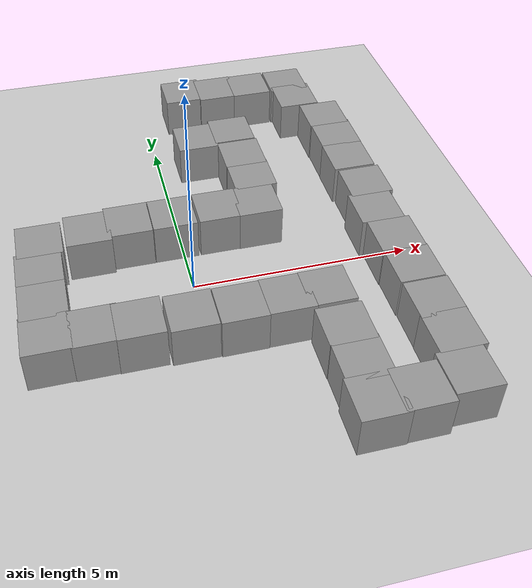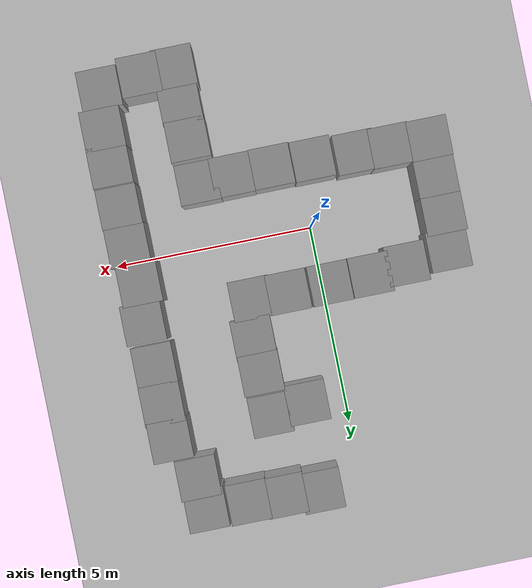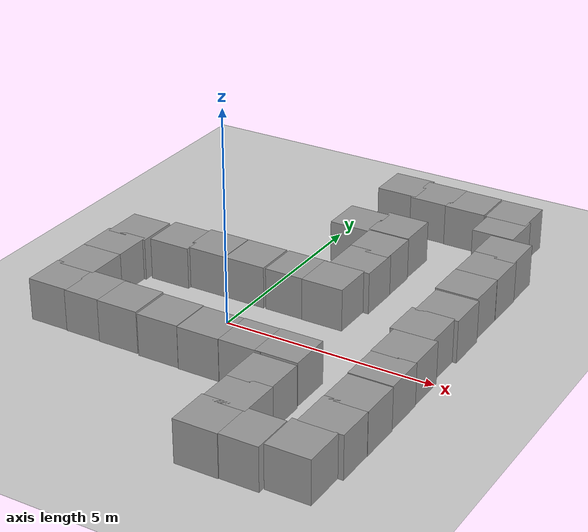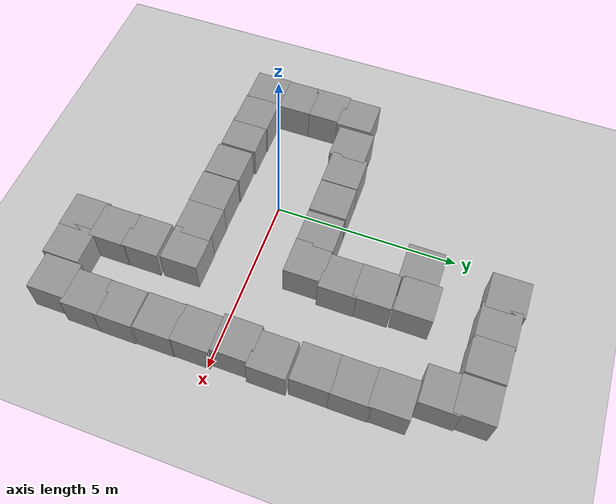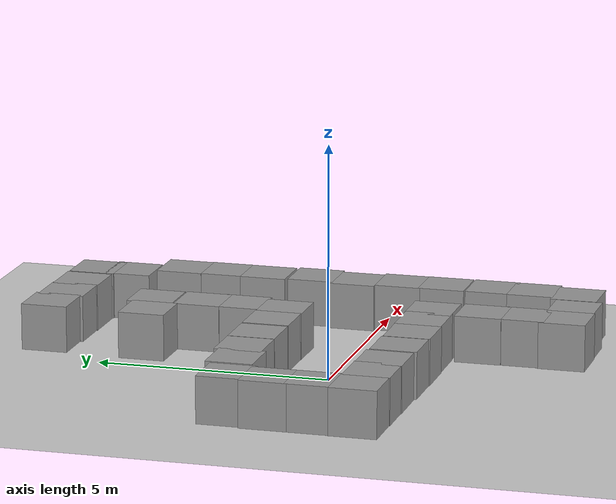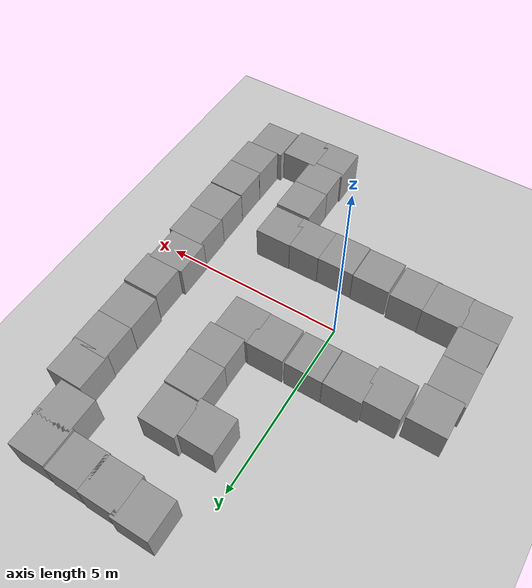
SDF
<sdf version="1.7">
 <world name="default">
  <light name="sun" type="directional">
   <pose>0 0 10 0 -0 0</pose>
   <diffuse>0.8 0.8 0.8 1</diffuse>
   <specular>0.2 0.2 0.2 1</specular>
   <attenuation>
    <range>1000</range>
    <constant>0.9</constant>
    <linear>0.01</linear>
    <quadratic>0.001</quadratic>
   </attenuation>
   <direction>-0.5 0.1 -0.9</direction>
   <spot><inner_angle>0</inner_angle><outer_angle>0</outer_angle><falloff>0</falloff></spot>
  </light>
  <model name="ground_plane">
   <static>1</static>
   <link name="link">
    <collision name="collision">
     <geometry><plane><normal>0 0 1</normal><size>100 100</size></plane></geometry>
     <surface>
      <contact><collide_bitmask>65535</collide_bitmask></contact>
      <friction><ode><mu>100</mu><mu2>50</mu2></ode></friction>
     </surface>
    </collision>
    <visual name="visual">
     <cast_shadows>0</cast_shadows>
     <geometry><plane><normal>0 0 1</normal><size>100 100</size></plane></geometry>
     <material>
      <script><uri>file://media/materials/scripts/gazebo.material</uri><name>Gazebo/Grey</name></script>
     </material>
    </visual>
   </link>
  </model>
  <gravity>0 0 -9.8</gravity>
  <magnetic_field>6e-06 2.3e-05 -4.2e-05</magnetic_field>
  <atmosphere type="adiabatic"/>
  <physics type="ode">
   <max_step_size>0.001</max_step_size>
   <real_time_factor>1</real_time_factor>
   <real_time_update_rate>1000</real_time_update_rate>
  </physics>
  <scene><ambient>0.4 0.4 0.4 1</ambient><background>0.7 0.7 0.7 1</background><shadows>1</shadows></scene>
  <spherical_coordinates>
   <surface_model>EARTH_WGS84</surface_model>
   <latitude_deg>0</latitude_deg>
   <longitude_deg>0</longitude_deg>
   <elevation>0</elevation>
   <heading_deg>0</heading_deg>
  </spherical_coordinates>
  <model name="unit_box">
   <pose>-1.18505 1.46469 0.5 0 -0 0</pose>
   <link name="link">
    <inertial>
     <mass>1</mass>
     <inertia>
      <ixx>0.166667</ixx>
      <ixy>0</ixy>
      <ixz>0</ixz>
      <iyy>0.166667</iyy>
      <iyz>0</iyz>
      <izz>0.166667</izz>
     </inertia>
    </inertial>
    <collision name="collision"><geometry><box><size>1 1 1</size></box></geometry></collision>
    <visual name="visual">
     <geometry><box><size>1 1 1</size></box></geometry>
     <material>
      <script><name>Gazebo/Grey</name><uri>file://media/materials/scripts/gazebo.material</uri></script>
     </material>
    </visual>
   </link>
  </model>
  <model name="unit_box_clone">
   <pose>-0.170822 1.46764 0.5 0 -0 0</pose>
   <link name="link">
    <inertial>
     <mass>1</mass>
     <inertia>
      <ixx>0.166667</ixx>
      <ixy>0</ixy>
      <ixz>0</ixz>
      <iyy>0.166667</iyy>
      <iyz>0</iyz>
      <izz>0.166667</izz>
     </inertia>
    </inertial>
    <collision name="collision"><geometry><box><size>1 1 1</size></box></geometry></collision>
    <visual name="visual">
     <geometry><box><size>1 1 1</size></box></geometry>
     <material>
      <script><name>Gazebo/Grey</name><uri>file://media/materials/scripts/gazebo.material</uri></script>
     </material>
    </visual>
   </link>
  </model>
  <model name="unit_box_clone_0">
   <pose>0.879436 1.47037 0.5 0 -0 0</pose>
   <link name="link">
    <inertial>
     <mass>1</mass>
     <inertia>
      <ixx>0.166667</ixx>
      <ixy>0</ixy>
      <ixz>0</ixz>
      <iyy>0.166667</iyy>
      <iyz>0</iyz>
      <izz>0.166667</izz>
     </inertia>
    </inertial>
    <collision name="collision"><geometry><box><size>1 1 1</size></box></geometry></collision>
    <visual name="visual">
     <geometry><box><size>1 1 1</size></box></geometry>
     <material>
      <script><name>Gazebo/Grey</name><uri>file://media/materials/scripts/gazebo.material</uri></script>
     </material>
    </visual>
   </link>
  </model>
  <model name="unit_box_clone_1">
   <pose>1.80386 1.45866 0.5 0 -0 0</pose>
   <link name="link">
    <inertial>
     <mass>1</mass>
     <inertia>
      <ixx>0.166667</ixx>
      <ixy>0</ixy>
      <ixz>0</ixz>
      <iyy>0.166667</iyy>
      <iyz>0</iyz>
      <izz>0.166667</izz>
     </inertia>
    </inertial>
    <collision name="collision"><geometry><box><size>1 1 1</size></box></geometry></collision>
    <visual name="visual">
     <geometry><box><size>1 1 1</size></box></geometry>
     <material>
      <script><name>Gazebo/Grey</name><uri>file://media/materials/scripts/gazebo.material</uri></script>
     </material>
    </visual>
   </link>
  </model>
  <model name="unit_box_clone_4">
   <pose>2.51695 -1.58945 0.5 0 -0 0</pose>
   <link name="link">
    <inertial>
     <mass>1</mass>
     <inertia>
      <ixx>0.166667</ixx>
      <ixy>0</ixy>
      <ixz>0</ixz>
      <iyy>0.166667</iyy>
      <iyz>0</iyz>
      <izz>0.166667</izz>
     </inertia>
    </inertial>
    <collision name="collision"><geometry><box><size>1 1 1</size></box></geometry></collision>
    <visual name="visual">
     <geometry><box><size>1 1 1</size></box></geometry>
     <material>
      <script><name>Gazebo/Grey</name><uri>file://media/materials/scripts/gazebo.material</uri></script>
     </material>
    </visual>
   </link>
  </model>
  <model name="unit_box_clone_5">
   <pose>1.66232 -1.60231 0.5 0 -0 0</pose>
   <link name="link">
    <inertial>
     <mass>1</mass>
     <inertia>
      <ixx>0.166667</ixx>
      <ixy>0</ixy>
      <ixz>0</ixz>
      <iyy>0.166667</iyy>
      <iyz>0</iyz>
      <izz>0.166667</izz>
     </inertia>
    </inertial>
    <collision name="collision"><geometry><box><size>1 1 1</size></box></geometry></collision>
    <visual name="visual">
     <geometry><box><size>1 1 1</size></box></geometry>
     <material>
      <script><name>Gazebo/Grey</name><uri>file://media/materials/scripts/gazebo.material</uri></script>
     </material>
    </visual>
   </link>
  </model>
  <model name="unit_box_clone_6">
   <pose>1.89562 4.32996 0.5 0 -0 0</pose>
   <link name="link">
    <inertial>
     <mass>1</mass>
     <inertia>
      <ixx>0.166667</ixx>
      <ixy>0</ixy>
      <ixz>0</ixz>
      <iyy>0.166667</iyy>
      <iyz>0</iyz>
      <izz>0.166667</izz>
     </inertia>
    </inertial>
    <collision name="collision"><geometry><box><size>1 1 1</size></box></geometry></collision>
    <visual name="visual">
     <geometry><box><size>1 1 1</size></box></geometry>
     <material>
      <script><name>Gazebo/Grey</name><uri>file://media/materials/scripts/gazebo.material</uri></script>
     </material>
    </visual>
   </link>
  </model>
  <model name="unit_box_clone_7">
   <pose>1.92634 3.29637 0.5 0 -0 0</pose>
   <link name="link">
    <inertial>
     <mass>1</mass>
     <inertia>
      <ixx>0.166667</ixx>
      <ixy>0</ixy>
      <ixz>0</ixz>
      <iyy>0.166667</iyy>
      <iyz>0</iyz>
      <izz>0.166667</izz>
     </inertia>
    </inertial>
    <collision name="collision"><geometry><box><size>1 1 1</size></box></geometry></collision>
    <visual name="visual">
     <geometry><box><size>1 1 1</size></box></geometry>
     <material>
      <script><name>Gazebo/Grey</name><uri>file://media/materials/scripts/gazebo.material</uri></script>
     </material>
    </visual>
   </link>
  </model>
  <model name="unit_box_clone_8">
   <pose>1.93707 2.4129 0.5 0 -0 0</pose>
   <link name="link">
    <inertial>
     <mass>1</mass>
     <inertia>
      <ixx>0.166667</ixx>
      <ixy>0</ixy>
      <ixz>0</ixz>
      <iyy>0.166667</iyy>
      <iyz>0</iyz>
      <izz>0.166667</izz>
     </inertia>
    </inertial>
    <collision name="collision"><geometry><box><size>1 1 1</size></box></geometry></collision>
    <visual name="visual">
     <geometry><box><size>1 1 1</size></box></geometry>
     <material>
      <script><name>Gazebo/Grey</name><uri>file://media/materials/scripts/gazebo.material</uri></script>
     </material>
    </visual>
   </link>
  </model>
  <model name="unit_box_clone_2">
   <pose>4.42952 4.46133 0.5 0 -0 0</pose>
   <link name="link">
    <inertial>
     <mass>1</mass>
     <inertia>
      <ixx>0.166667</ixx>
      <ixy>0</ixy>
      <ixz>0</ixz>
      <iyy>0.166667</iyy>
      <iyz>0</iyz>
      <izz>0.166667</izz>
     </inertia>
    </inertial>
    <collision name="collision"><geometry><box><size>1 1 1</size></box></geometry></collision>
    <visual name="visual">
     <geometry><box><size>1 1 1</size></box></geometry>
     <material>
      <script><name>Gazebo/Grey</name><uri>file://media/materials/scripts/gazebo.material</uri></script>
     </material>
    </visual>
   </link>
  </model>
  <model name="unit_box_clone_9">
   <pose>4.4492 3.55149 0.5 0 -0 0</pose>
   <link name="link">
    <inertial>
     <mass>1</mass>
     <inertia>
      <ixx>0.166667</ixx>
      <ixy>0</ixy>
      <ixz>0</ixz>
      <iyy>0.166667</iyy>
      <iyz>0</iyz>
      <izz>0.166667</izz>
     </inertia>
    </inertial>
    <collision name="collision"><geometry><box><size>1 1 1</size></box></geometry></collision>
    <visual name="visual">
     <geometry><box><size>1 1 1</size></box></geometry>
     <material>
      <script><name>Gazebo/Grey</name><uri>file://media/materials/scripts/gazebo.material</uri></script>
     </material>
    </visual>
   </link>
  </model>
  <model name="unit_box_clone_10">
   <pose>4.44361 2.57263 0.5 0 -0 0</pose>
   <link name="link">
    <inertial>
     <mass>1</mass>
     <inertia>
      <ixx>0.166667</ixx>
      <ixy>0</ixy>
      <ixz>0</ixz>
      <iyy>0.166667</iyy>
      <iyz>0</iyz>
      <izz>0.166667</izz>
     </inertia>
    </inertial>
    <collision name="collision"><geometry><box><size>1 1 1</size></box></geometry></collision>
    <visual name="visual">
     <geometry><box><size>1 1 1</size></box></geometry>
     <material>
      <script><name>Gazebo/Grey</name><uri>file://media/materials/scripts/gazebo.material</uri></script>
     </material>
    </visual>
   </link>
  </model>
  <model name="unit_box_clone_11">
   <pose>4.50204 1.51512 0.5 0 -0 0</pose>
   <link name="link">
    <inertial>
     <mass>1</mass>
     <inertia>
      <ixx>0.166667</ixx>
      <ixy>0</ixy>
      <ixz>0</ixz>
      <iyy>0.166667</iyy>
      <iyz>0</iyz>
      <izz>0.166667</izz>
     </inertia>
    </inertial>
    <collision name="collision"><geometry><box><size>1 1 1</size></box></geometry></collision>
    <visual name="visual">
     <geometry><box><size>1 1 1</size></box></geometry>
     <material>
      <script><name>Gazebo/Grey</name><uri>file://media/materials/scripts/gazebo.material</uri></script>
     </material>
    </visual>
   </link>
  </model>
  <model name="unit_box_clone_12">
   <pose>4.40958 0.568618 0.5 0 -0 0</pose>
   <link name="link">
    <inertial>
     <mass>1</mass>
     <inertia>
      <ixx>0.166667</ixx>
      <ixy>0</ixy>
      <ixz>0</ixz>
      <iyy>0.166667</iyy>
      <iyz>0</iyz>
      <izz>0.166667</izz>
     </inertia>
    </inertial>
    <collision name="collision"><geometry><box><size>1 1 1</size></box></geometry></collision>
    <visual name="visual">
     <geometry><box><size>1 1 1</size></box></geometry>
     <material>
      <script><name>Gazebo/Grey</name><uri>file://media/materials/scripts/gazebo.material</uri></script>
     </material>
    </visual>
   </link>
  </model>
  <model name="unit_box_clone_13">
   <pose>4.50703 -0.426358 0.5 0 -0 0</pose>
   <link name="link">
    <inertial>
     <mass>1</mass>
     <inertia>
      <ixx>0.166667</ixx>
      <ixy>0</ixy>
      <ixz>0</ixz>
      <iyy>0.166667</iyy>
      <iyz>0</iyz>
      <izz>0.166667</izz>
     </inertia>
    </inertial>
    <collision name="collision"><geometry><box><size>1 1 1</size></box></geometry></collision>
    <visual name="visual">
     <geometry><box><size>1 1 1</size></box></geometry>
     <material>
      <script><name>Gazebo/Grey</name><uri>file://media/materials/scripts/gazebo.material</uri></script>
     </material>
    </visual>
   </link>
  </model>
  <model name="unit_box_clone_3">
   <pose>4.52358 -1.39084 0.5 0 -0 0</pose>
   <link name="link">
    <inertial>
     <mass>1</mass>
     <inertia>
      <ixx>0.166667</ixx>
      <ixy>0</ixy>
      <ixz>0</ixz>
      <iyy>0.166667</iyy>
      <iyz>0</iyz>
      <izz>0.166667</izz>
     </inertia>
    </inertial>
    <collision name="collision"><geometry><box><size>1 1 1</size></box></geometry></collision>
    <visual name="visual">
     <geometry><box><size>1 1 1</size></box></geometry>
     <material>
      <script><name>Gazebo/Grey</name><uri>file://media/materials/scripts/gazebo.material</uri></script>
     </material>
    </visual>
   </link>
  </model>
  <model name="unit_box_clone_14">
   <pose>4.54227 -2.41943 0.5 0 -0 0</pose>
   <link name="link">
    <inertial>
     <mass>1</mass>
     <inertia>
      <ixx>0.166667</ixx>
      <ixy>0</ixy>
      <ixz>0</ixz>
      <iyy>0.166667</iyy>
      <iyz>0</iyz>
      <izz>0.166667</izz>
     </inertia>
    </inertial>
    <collision name="collision"><geometry><box><size>1 1 1</size></box></geometry></collision>
    <visual name="visual">
     <geometry><box><size>1 1 1</size></box></geometry>
     <material>
      <script><name>Gazebo/Grey</name><uri>file://media/materials/scripts/gazebo.material</uri></script>
     </material>
    </visual>
   </link>
  </model>
  <model name="unit_box_clone_15">
   <pose>4.53558 -3.33359 0.5 0 -0 0</pose>
   <link name="link">
    <inertial>
     <mass>1</mass>
     <inertia>
      <ixx>0.166667</ixx>
      <ixy>0</ixy>
      <ixz>0</ixz>
      <iyy>0.166667</iyy>
      <iyz>0</iyz>
      <izz>0.166667</izz>
     </inertia>
    </inertial>
    <collision name="collision"><geometry><box><size>1 1 1</size></box></geometry></collision>
    <visual name="visual">
     <geometry><box><size>1 1 1</size></box></geometry>
     <material>
      <script><name>Gazebo/Grey</name><uri>file://media/materials/scripts/gazebo.material</uri></script>
     </material>
    </visual>
   </link>
  </model>
  <model name="unit_box_clone_16">
   <pose>2.54753 -2.67081 0.5 0 -0 0</pose>
   <link name="link">
    <inertial>
     <mass>1</mass>
     <inertia>
      <ixx>0.166667</ixx>
      <ixy>0</ixy>
      <ixz>0</ixz>
      <iyy>0.166667</iyy>
      <iyz>0</iyz>
      <izz>0.166667</izz>
     </inertia>
    </inertial>
    <collision name="collision"><geometry><box><size>1 1 1</size></box></geometry></collision>
    <visual name="visual">
     <geometry><box><size>1 1 1</size></box></geometry>
     <material>
      <script><name>Gazebo/Grey</name><uri>file://media/materials/scripts/gazebo.material</uri></script>
     </material>
    </visual>
   </link>
  </model>
  <model name="unit_box_clone_17">
   <pose>2.55854 -3.58198 0.5 0 -0 0</pose>
   <link name="link">
    <inertial>
     <mass>1</mass>
     <inertia>
      <ixx>0.166667</ixx>
      <ixy>0</ixy>
      <ixz>0</ixz>
      <iyy>0.166667</iyy>
      <iyz>0</iyz>
      <izz>0.166667</izz>
     </inertia>
    </inertial>
    <collision name="collision"><geometry><box><size>1 1 1</size></box></geometry></collision>
    <visual name="visual">
     <geometry><box><size>1 1 1</size></box></geometry>
     <material>
      <script><name>Gazebo/Grey</name><uri>file://media/materials/scripts/gazebo.material</uri></script>
     </material>
    </visual>
   </link>
  </model>
  <model name="unit_box_clone_18">
   <pose>2.51918 -4.47005 0.5 0 -0 0</pose>
   <link name="link">
    <inertial>
     <mass>1</mass>
     <inertia>
      <ixx>0.166667</ixx>
      <ixy>0</ixy>
      <ixz>0</ixz>
      <iyy>0.166667</iyy>
      <iyz>0</iyz>
      <izz>0.166667</izz>
     </inertia>
    </inertial>
    <collision name="collision"><geometry><box><size>1 1 1</size></box></geometry></collision>
    <visual name="visual">
     <geometry><box><size>1 1 1</size></box></geometry>
     <material>
      <script><name>Gazebo/Grey</name><uri>file://media/materials/scripts/gazebo.material</uri></script>
     </material>
    </visual>
   </link>
  </model>
  <model name="unit_box_clone_19">
   <pose>3.39665 -4.45203 0.5 0 -0 0</pose>
   <link name="link">
    <inertial>
     <mass>1</mass>
     <inertia>
      <ixx>0.166667</ixx>
      <ixy>0</ixy>
      <ixz>0</ixz>
      <iyy>0.166667</iyy>
      <iyz>0</iyz>
      <izz>0.166667</izz>
     </inertia>
    </inertial>
    <collision name="collision"><geometry><box><size>1 1 1</size></box></geometry></collision>
    <visual name="visual">
     <geometry><box><size>1 1 1</size></box></geometry>
     <material>
      <script><name>Gazebo/Grey</name><uri>file://media/materials/scripts/gazebo.material</uri></script>
     </material>
    </visual>
   </link>
  </model>
  <model name="unit_box_clone_20">
   <pose>4.41807 -4.31439 0.5 0 -0 0</pose>
   <link name="link">
    <inertial>
     <mass>1</mass>
     <inertia>
      <ixx>0.166667</ixx>
      <ixy>0</ixy>
      <ixz>0</ixz>
      <iyy>0.166667</iyy>
      <iyz>0</iyz>
      <izz>0.166667</izz>
     </inertia>
    </inertial>
    <collision name="collision"><geometry><box><size>1 1 1</size></box></geometry></collision>
    <visual name="visual">
     <geometry><box><size>1 1 1</size></box></geometry>
     <material>
      <script><name>Gazebo/Grey</name><uri>file://media/materials/scripts/gazebo.material</uri></script>
     </material>
    </visual>
   </link>
  </model>
  <model name="unit_box_clone_21">
   <pose>0.663205 -1.61429 0.5 0 -0 0</pose>
   <link name="link">
    <inertial>
     <mass>1</mass>
     <inertia>
      <ixx>0.166667</ixx>
      <ixy>0</ixy>
      <ixz>0</ixz>
      <iyy>0.166667</iyy>
      <iyz>0</iyz>
      <izz>0.166667</izz>
     </inertia>
    </inertial>
    <collision name="collision"><geometry><box><size>1 1 1</size></box></geometry></collision>
    <visual name="visual">
     <geometry><box><size>1 1 1</size></box></geometry>
     <material>
      <script><name>Gazebo/Grey</name><uri>file://media/materials/scripts/gazebo.material</uri></script>
     </material>
    </visual>
   </link>
  </model>
  <model name="unit_box_clone_22">
   <pose>-0.354118 -1.595 0.5 0 -0 0</pose>
   <link name="link">
    <inertial>
     <mass>1</mass>
     <inertia>
      <ixx>0.166667</ixx>
      <ixy>0</ixy>
      <ixz>0</ixz>
      <iyy>0.166667</iyy>
      <iyz>0</iyz>
      <izz>0.166667</izz>
     </inertia>
    </inertial>
    <collision name="collision"><geometry><box><size>1 1 1</size></box></geometry></collision>
    <visual name="visual">
     <geometry><box><size>1 1 1</size></box></geometry>
     <material>
      <script><name>Gazebo/Grey</name><uri>file://media/materials/scripts/gazebo.material</uri></script>
     </material>
    </visual>
   </link>
  </model>
  <model name="unit_box_clone_23">
   <pose>-1.40969 -1.54885 0.5 0 -0 0</pose>
   <link name="link">
    <inertial>
     <mass>1</mass>
     <inertia>
      <ixx>0.166667</ixx>
      <ixy>0</ixy>
      <ixz>0</ixz>
      <iyy>0.166667</iyy>
      <iyz>0</iyz>
      <izz>0.166667</izz>
     </inertia>
    </inertial>
    <collision name="collision"><geometry><box><size>1 1 1</size></box></geometry></collision>
    <visual name="visual">
     <geometry><box><size>1 1 1</size></box></geometry>
     <material>
      <script><name>Gazebo/Grey</name><uri>file://media/materials/scripts/gazebo.material</uri></script>
     </material>
    </visual>
   </link>
  </model>
  <model name="unit_box_clone_24">
   <pose>-2.29059 -1.53403 0.5 0 -0 0</pose>
   <link name="link">
    <inertial>
     <mass>1</mass>
     <inertia>
      <ixx>0.166667</ixx>
      <ixy>0</ixy>
      <ixz>0</ixz>
      <iyy>0.166667</iyy>
      <iyz>0</iyz>
      <izz>0.166667</izz>
     </inertia>
    </inertial>
    <collision name="collision"><geometry><box><size>1 1 1</size></box></geometry></collision>
    <visual name="visual">
     <geometry><box><size>1 1 1</size></box></geometry>
     <material>
      <script><name>Gazebo/Grey</name><uri>file://media/materials/scripts/gazebo.material</uri></script>
     </material>
    </visual>
   </link>
  </model>
  <model name="unit_box_clone_25">
   <pose>-3.24967 -1.51741 0.5 0 -0 0</pose>
   <link name="link">
    <inertial>
     <mass>1</mass>
     <inertia>
      <ixx>0.166667</ixx>
      <ixy>0</ixy>
      <ixz>0</ixz>
      <iyy>0.166667</iyy>
      <iyz>0</iyz>
      <izz>0.166667</izz>
     </inertia>
    </inertial>
    <collision name="collision"><geometry><box><size>1 1 1</size></box></geometry></collision>
    <visual name="visual">
     <geometry><box><size>1 1 1</size></box></geometry>
     <material>
      <script><name>Gazebo/Grey</name><uri>file://media/materials/scripts/gazebo.material</uri></script>
     </material>
    </visual>
   </link>
  </model>
  <model name="unit_box_clone_26">
   <pose>-3.23115 -0.604262 0.5 0 -0 0</pose>
   <link name="link">
    <inertial>
     <mass>1</mass>
     <inertia>
      <ixx>0.166667</ixx>
      <ixy>0</ixy>
      <ixz>0</ixz>
      <iyy>0.166667</iyy>
      <iyz>0</iyz>
      <izz>0.166667</izz>
     </inertia>
    </inertial>
    <collision name="collision"><geometry><box><size>1 1 1</size></box></geometry></collision>
    <visual name="visual">
     <geometry><box><size>1 1 1</size></box></geometry>
     <material>
      <script><name>Gazebo/Grey</name><uri>file://media/materials/scripts/gazebo.material</uri></script>
     </material>
    </visual>
   </link>
  </model>
  <model name="unit_box_clone_27">
   <pose>-3.23168 0.340398 0.5 0 -0 0</pose>
   <link name="link">
    <inertial>
     <mass>1</mass>
     <inertia>
      <ixx>0.166667</ixx>
      <ixy>0</ixy>
      <ixz>0</ixz>
      <iyy>0.166667</iyy>
      <iyz>0</iyz>
      <izz>0.166667</izz>
     </inertia>
    </inertial>
    <collision name="collision"><geometry><box><size>1 1 1</size></box></geometry></collision>
    <visual name="visual">
     <geometry><box><size>1 1 1</size></box></geometry>
     <material>
      <script><name>Gazebo/Grey</name><uri>file://media/materials/scripts/gazebo.material</uri></script>
     </material>
    </visual>
   </link>
  </model>
  <model name="unit_box_clone_28">
   <pose>-3.17535 1.23924 0.5 0 -0 0</pose>
   <link name="link">
    <inertial>
     <mass>1</mass>
     <inertia>
      <ixx>0.166667</ixx>
      <ixy>0</ixy>
      <ixz>0</ixz>
      <iyy>0.166667</iyy>
      <iyz>0</iyz>
      <izz>0.166667</izz>
     </inertia>
    </inertial>
    <collision name="collision"><geometry><box><size>1 1 1</size></box></geometry></collision>
    <visual name="visual">
     <geometry><box><size>1 1 1</size></box></geometry>
     <material>
      <script><name>Gazebo/Grey</name><uri>file://media/materials/scripts/gazebo.material</uri></script>
     </material>
    </visual>
   </link>
  </model>
  <model name="unit_box_clone_29">
   <pose>-2.10324 1.37282 0.5 0 -0 0</pose>
   <link name="link">
    <inertial>
     <mass>1</mass>
     <inertia>
      <ixx>0.166667</ixx>
      <ixy>0</ixy>
      <ixz>0</ixz>
      <iyy>0.166667</iyy>
      <iyz>0</iyz>
      <izz>0.166667</izz>
     </inertia>
    </inertial>
    <collision name="collision"><geometry><box><size>1 1 1</size></box></geometry></collision>
    <visual name="visual">
     <geometry><box><size>1 1 1</size></box></geometry>
     <material>
      <script><name>Gazebo/Grey</name><uri>file://media/materials/scripts/gazebo.material</uri></script>
     </material>
    </visual>
   </link>
  </model>
  <model name="unit_box_clone_31">
   <pose>2.85441 6.31237 0.5 0 -0 0</pose>
   <link name="link">
    <inertial>
     <mass>1</mass>
     <inertia>
      <ixx>0.166667</ixx>
      <ixy>0</ixy>
      <ixz>0</ixz>
      <iyy>0.166667</iyy>
      <iyz>0</iyz>
      <izz>0.166667</izz>
     </inertia>
    </inertial>
    <collision name="collision"><geometry><box><size>1 1 1</size></box></geometry></collision>
    <visual name="visual">
     <geometry><box><size>1 1 1</size></box></geometry>
     <material>
      <script><name>Gazebo/Grey</name><uri>file://media/materials/scripts/gazebo.material</uri></script>
     </material>
    </visual>
   </link>
  </model>
  <model name="unit_box_clone_32">
   <pose>3.8975 6.2935 0.5 0 -0 0</pose>
   <link name="link">
    <inertial>
     <mass>1</mass>
     <inertia>
      <ixx>0.166667</ixx>
      <ixy>0</ixy>
      <ixz>0</ixz>
      <iyy>0.166667</iyy>
      <iyz>0</iyz>
      <izz>0.166667</izz>
     </inertia>
    </inertial>
    <collision name="collision"><geometry><box><size>1 1 1</size></box></geometry></collision>
    <visual name="visual">
     <geometry><box><size>1 1 1</size></box></geometry>
     <material>
      <script><name>Gazebo/Grey</name><uri>file://media/materials/scripts/gazebo.material</uri></script>
     </material>
    </visual>
   </link>
  </model>
  <model name="unit_box_clone_33">
   <pose>3.94347 5.49319 0.5 0 -0 0</pose>
   <link name="link">
    <inertial>
     <mass>1</mass>
     <inertia>
      <ixx>0.166667</ixx>
      <ixy>0</ixy>
      <ixz>0</ixz>
      <iyy>0.166667</iyy>
      <iyz>0</iyz>
      <izz>0.166667</izz>
     </inertia>
    </inertial>
    <collision name="collision"><geometry><box><size>1 1 1</size></box></geometry></collision>
    <visual name="visual">
     <geometry><box><size>1 1 1</size></box></geometry>
     <material>
      <script><name>Gazebo/Grey</name><uri>file://media/materials/scripts/gazebo.material</uri></script>
     </material>
    </visual>
   </link>
  </model>
  <model name="unit_box_clone_34">
   <pose>1.93567 6.33139 0.5 0 -0 0</pose>
   <link name="link">
    <inertial>
     <mass>1</mass>
     <inertia>
      <ixx>0.166667</ixx>
      <ixy>0</ixy>
      <ixz>0</ixz>
      <iyy>0.166667</iyy>
      <iyz>0</iyz>
      <izz>0.166667</izz>
     </inertia>
    </inertial>
    <collision name="collision"><geometry><box><size>1 1 1</size></box></geometry></collision>
    <visual name="visual">
     <geometry><box><size>1 1 1</size></box></geometry>
     <material>
      <script><name>Gazebo/Grey</name><uri>file://media/materials/scripts/gazebo.material</uri></script>
     </material>
    </visual>
   </link>
  </model>
  <model name="unit_box_clone_30_clone">
   <pose>1.03249 6.39483 0.5 0 -0 0</pose>
   <link name="link">
    <inertial>
     <mass>1</mass>
     <inertia>
      <ixx>0.166667</ixx>
      <ixy>0</ixy>
      <ixz>0</ixz>
      <iyy>0.166667</iyy>
      <iyz>0</iyz>
      <izz>0.166667</izz>
     </inertia>
    </inertial>
    <collision name="collision"><geometry><box><size>1 1 1</size></box></geometry></collision>
    <visual name="visual">
     <geometry><box><size>1 1 1</size></box></geometry>
     <material>
      <script><name>Gazebo/Grey</name><uri>file://media/materials/scripts/gazebo.material</uri></script>
     </material>
    </visual>
   </link>
  </model>
  <model name="unit_box_clone_30_clone_0">
   <pose>0.957784 4.2158 0.5 0 -0 0</pose>
   <link name="link">
    <inertial>
     <mass>1</mass>
     <inertia>
      <ixx>0.166667</ixx>
      <ixy>0</ixy>
      <ixz>0</ixz>
      <iyy>0.166667</iyy>
      <iyz>0</iyz>
      <izz>0.166667</izz>
     </inertia>
    </inertial>
    <collision name="collision"><geometry><box><size>1 1 1</size></box></geometry></collision>
    <visual name="visual">
     <geometry><box><size>1 1 1</size></box></geometry>
     <material>
      <script><name>Gazebo/Grey</name><uri>file://media/materials/scripts/gazebo.material</uri></script>
     </material>
    </visual>
   </link>
  </model>
 </world>
</sdf>
